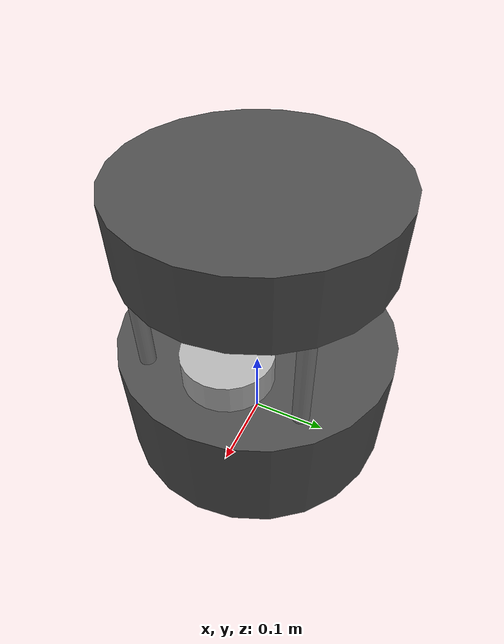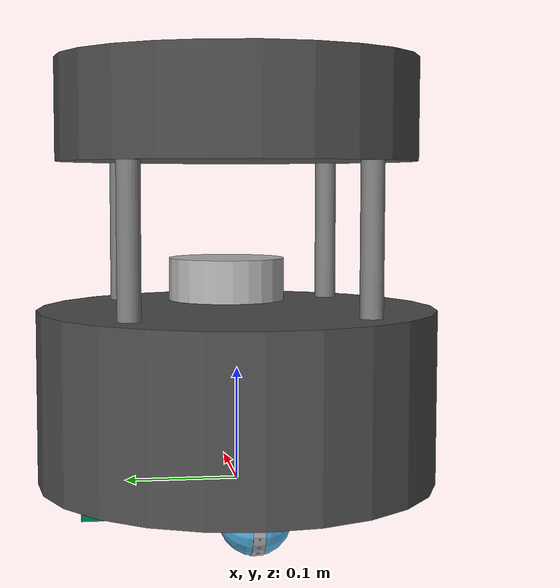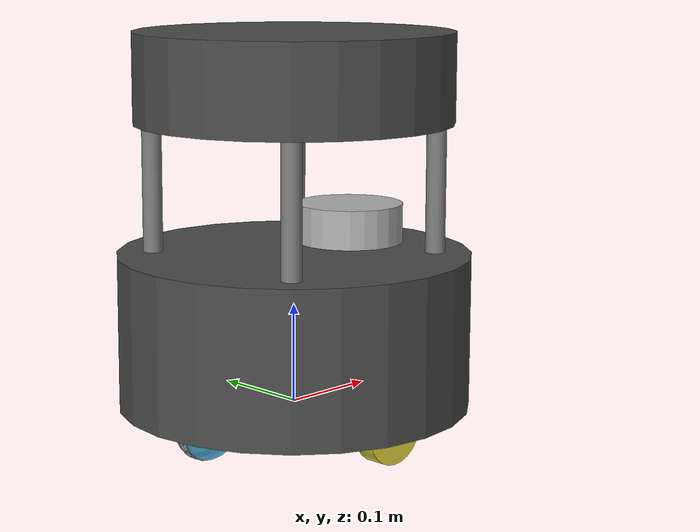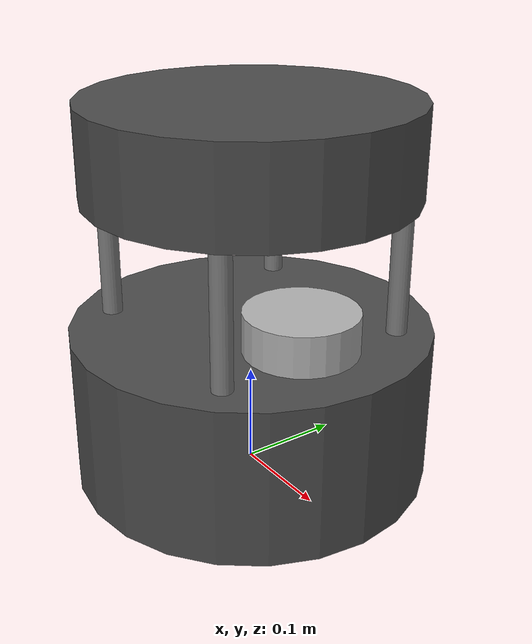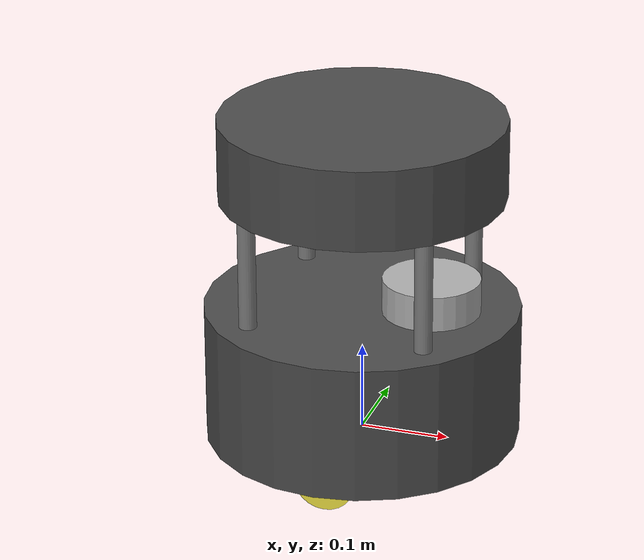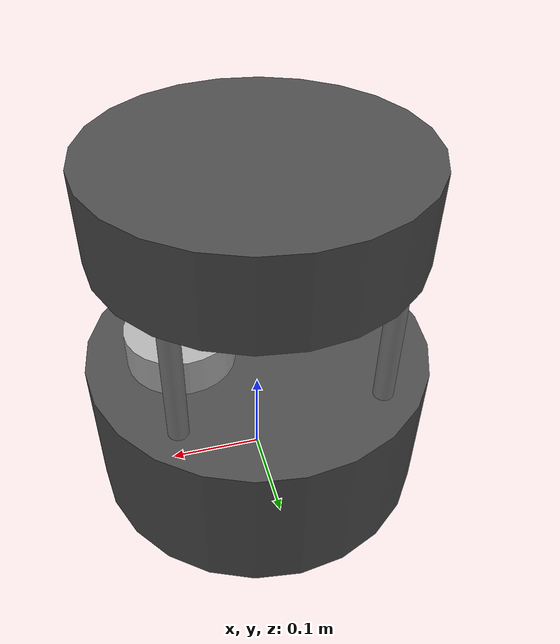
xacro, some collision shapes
<?xml version="1.0"?>
<robot name="barista_robot" xmlns:xacro="http://www.ros.org/wiki/xacro">

    <xacro:arg name="include_laser" default="true"/>
    <xacro:arg name="robot_name" default=""/>
    <xacro:arg name="color" default="0.3 0.3 0.3 1"/>

    <!-- Assignment dimensions, in metres. -->
    <xacro:property name="wheel_radius" value="0.0352"/>
    <xacro:property name="wheel_width" value="0.0206"/>
    <xacro:property name="rod_width" value="0.02"/>
    <xacro:property name="rod_length" value="0.22"/>
    <xacro:property name="robot_name" value="$(arg robot_name)"/>

    <xacro:property name="prefix" value="${robot_name + '/' if robot_name else ''}"/>

    <!-- Reusable components. -->
    <xacro:include filename="drive_wheel.xacro"/>
    <xacro:include filename="caster_wheel.xacro"/>
    <xacro:include filename="standoff_rod.xacro"/>
    <xacro:include filename="cup_holder_tray.xacro"/>
    <xacro:include filename="laser_scanner.xacro"/>

    <material name="base_body_color"><color rgba="$(arg color)"/></material>
    <material name="gray"><color rgba="0.5 0.5 0.5 1"/></material>

    <!-- Main body. -->
    <link name="base_link"/>
    <link name="chassis">
        <inertial>
            <origin xyz="0 0 0.11661564" rpy="0 0 0"/>
            <mass value="2"/>
            <inertia ixx="0.0594855" ixy="0" ixz="0"
                     iyy="0.0583976" iyz="0.00000142499" izz="0.0292619"/>
        </inertial>
        <visual>
            <origin xyz="0 0 0.077" rpy="0 0 0"/>
            <geometry><cylinder radius="0.178" length="0.155"/></geometry>
            <material name="base_body_color"/>
        </visual>
        <collision>
            <origin xyz="0 0 0.077" rpy="0 0 0"/>
            <geometry><cylinder radius="0.178" length="0.155"/></geometry>
        </collision>
    </link>
    <joint name="base_link_joint" type="fixed">
        <origin rpy="0 0 0" xyz="0 0 0"/>
        <parent link="base_link"/>
        <child link="chassis"/>
    </joint>

    <!-- Drive wheels -->
    <xacro:drive_wheel side="left"  y="0.13"
                       radius="${wheel_radius}" width="${wheel_width}" color="green_dark"/>
    <xacro:drive_wheel side="right" y="-0.13"
                       radius="${wheel_radius}" width="${wheel_width}" color="black"/>

    <!-- Caster wheels -->
    <xacro:caster_wheel name="front" x="0.12" pitch_color="green_dark"
                        yaw_friction="false" roll_friction="true"/>
    <xacro:caster_wheel name="back" x="-0.12" pitch_color="green_light"
                        yaw_friction="true" roll_friction="false"/>

    <!-- Four rods -->
    <xacro:standoff_rod name="front_left_support_rod"  x="0.10"  y="0.10"  z="0.20"
                        width="${rod_width}" length="${rod_length}"/>
    <xacro:standoff_rod name="front_right_support_rod" x="0.10"  y="-0.10" z="0.20"
                        width="${rod_width}" length="${rod_length}"/>
    <xacro:standoff_rod name="back_left_support_rod"   x="-0.10" y="0.10"  z="0.20"
                        width="${rod_width}" length="${rod_length}"/>
    <xacro:standoff_rod name="back_right_support_rod"  x="-0.10" y="-0.10" z="0.20"
                        width="${rod_width}" length="${rod_length}"/>

    <xacro:cup_holder_tray radius="0.16" length="0.09" z="0.33"/>

    <!-- Disabled means the link, mesh, joint, and sensor are all absent. -->
    <xacro:if value="$(arg include_laser)">
        <xacro:laser_scanner/>
    </xacro:if>

    <!-- Existing Gazebo systems from the URDF. -->
    <gazebo>
        <plugin filename="gz-sim-joint-state-publisher-system"
                name="gz::sim::systems::JointStatePublisher">
            <topic>/${prefix}joint_states</topic>
            <update_rate>30</update_rate>
            <joint_name>joint_left_wheel</joint_name>
            <joint_name>joint_right_wheel</joint_name>
            <joint_name>front_yaw_joint</joint_name>
            <joint_name>back_yaw_joint</joint_name>
            <joint_name>front_roll_joint</joint_name>
            <joint_name>back_roll_joint</joint_name>
            <joint_name>front_pitch_joint</joint_name>
            <joint_name>back_pitch_joint</joint_name>
        </plugin>
    </gazebo>

    <gazebo>
        <plugin filename="gz-sim-diff-drive-system"
                name="gz::sim::systems::DiffDrive">
            <left_joint>joint_left_wheel</left_joint>
            <right_joint>joint_right_wheel</right_joint>
            <wheel_separation>0.26</wheel_separation>
            <wheel_radius>${wheel_radius}</wheel_radius>
            <topic>/${prefix}cmd_vel</topic>
            <publish_odom>true</publish_odom>
            <publish_odom_tf>true</publish_odom_tf>
            <publish_wheel_tf>true</publish_wheel_tf>
            <odom_topic>/${prefix}odom</odom_topic>
            <tf_topic>/${prefix}tf</tf_topic>
            <frame_id>${prefix}odom</frame_id>
            <child_frame_id>${prefix}base_link</child_frame_id>
        </plugin>
    </gazebo>
</robot>

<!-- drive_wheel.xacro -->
<robot xmlns:xacro="http://www.ros.org/wiki/xacro">
    <!-- Wheel axis, friction, and joint names match the original working URDF. -->
    <xacro:macro name="drive_wheel" params="side y radius width color">
        <link name="${side}_wheel">
            <visual>
                <origin rpy="0 1.5707 1.5707" xyz="0 0 0"/>
                <geometry>
                    <cylinder radius="${radius}" length="${width}"/>
                </geometry>
            </visual>
            <collision>
                <origin rpy="0 1.5707 1.5707" xyz="0 0 0"/>
                <geometry>
                    <cylinder radius="${radius}" length="${width}"/>
                </geometry>
            </collision>
            <inertial>
                <origin rpy="0 1.5707 1.5707" xyz="0 0 0"/>
                <mass value="0.05"/>
                <inertia
                    ixx="${0.05 * (3 * radius * radius + width * width) / 12}"
                    ixy="0" ixz="0"
                    iyy="${0.05 * (3 * radius * radius + width * width) / 12}"
                    iyz="0"
                    izz="${0.05 * radius * radius / 2}"/>
            </inertial>
        </link>

        <gazebo reference="${side}_wheel">
            <collision>
                <surface>
                    <friction>
                        <ode>
                            <mu>10.0</mu>
                            <mu2>10.0</mu2>
                        </ode>
                    </friction>
                    <contact>
                        <ode>
                            <kp>10000000.0</kp>
                            <kd>10000000.0</kd>
                        </ode>
                    </contact>
                </surface>
            </collision>
        </gazebo>

        <joint name="joint_${side}_wheel" type="continuous">
            <origin xyz="0 ${y} 0" rpy="0 0 0"/>
            <parent link="base_link"/>
            <child link="${side}_wheel"/>
            <axis xyz="0 1 0"/>
            <limit effort="10000" velocity="1000"/>
        </joint>
    </xacro:macro>
</robot>

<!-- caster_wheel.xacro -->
<robot xmlns:xacro="http://www.ros.org/wiki/xacro">
    <!-- Recreates the original three-joint yaw / roll / pitch caster assembly. -->
    <xacro:macro name="caster_wheel"
                 params="name x pitch_color yaw_friction roll_friction">
        <link name="${name}_yaw_link">
            <visual>
                <origin rpy="0 1.5707 1.5707" xyz="0 0 0"/>
                <geometry><cylinder length="0.01" radius="0.03"/></geometry>
            </visual>
            <collision>
                <origin rpy="0 1.5707 1.5707" xyz="0 0 0"/>
                <geometry><cylinder length="0.01" radius="0.03"/></geometry>
            </collision>
            <inertial>
                <origin rpy="0 1.5707 1.5707" xyz="0 0 0"/>
                <mass value="0.001"/>
                <inertia ixx="5.145833333333334e-09" ixy="0" ixz="0"
                         iyy="5.145833333333334e-09" iyz="0"
                         izz="1.0125000000000003e-08"/>
            </inertial>
        </link>

        <joint name="${name}_yaw_joint" type="continuous">
            <origin xyz="${x} 0 -0.005" rpy="0 0 0"/>
            <parent link="base_link"/>
            <child link="${name}_yaw_link"/>
            <axis xyz="0 0 1"/>
            <limit effort="1000.0" velocity="100.0"/>
            <xacro:if value="${yaw_friction}">
                <dynamics damping="0.0" friction="0.1"/>
            </xacro:if>
        </joint>

        <link name="${name}_roll_link">
            <visual>
                <origin rpy="0 1.5707 1.5707" xyz="0 0 0"/>
                <geometry><cylinder length="0.01" radius="0.03"/></geometry>
                <material name="base_body_color"/>
            </visual>
            <collision>
                <origin rpy="0 1.5707 1.5707" xyz="0 0 0"/>
                <geometry><cylinder length="0.01" radius="0.03"/></geometry>
            </collision>
            <inertial>
                <origin rpy="0 1.5707 1.5707" xyz="0 0 0"/>
                <mass value="0.001"/>
                <inertia ixx="2.7083333333333334e-08" ixy="0" ixz="0"
                         iyy="2.7083333333333334e-08" iyz="0"
                         izz="5.0000000000000004e-08"/>
            </inertial>
        </link>

        <joint name="${name}_roll_joint" type="continuous">
            <origin xyz="0 0 0" rpy="0 0 0"/>
            <parent link="${name}_yaw_link"/>
            <child link="${name}_roll_link"/>
            <axis xyz="1 0 0"/>
            <limit effort="1000.0" velocity="100.0"/>
            <xacro:if value="${roll_friction}">
                <dynamics damping="0.0" friction="0.1"/>
            </xacro:if>
        </joint>

        <link name="${name}_pitch_link">
            <visual>
                <origin rpy="0 1.5707 1.5707" xyz="0 0 0"/>
                <geometry><sphere radius="0.03"/></geometry>
            </visual>
            <collision>
                <origin rpy="0 1.5707 1.5707" xyz="0 0 0"/>
                <geometry><sphere radius="0.03"/></geometry>
            </collision>
            <inertial>
                <origin rpy="0 1.5707 1.5707" xyz="0 0 0"/>
                <mass value="0.001"/>
                <inertia ixx="4e-08" ixy="0" ixz="0"
                         iyy="4e-08" iyz="0" izz="4e-08"/>
            </inertial>
        </link>

        <gazebo reference="${name}_pitch_link">
            <collision>
                <surface>
                    <friction>
                        <ode>
                            <mu>0.5</mu>
                            <mu2>0.5</mu2>
                        </ode>
                    </friction>
                    <contact>
                        <ode>
                            <kp>10000000.0</kp>
                            <kd>10000000.0</kd>
                        </ode>
                    </contact>
                </surface>
            </collision>
        </gazebo>

        <joint name="${name}_pitch_joint" type="continuous">
            <origin xyz="0 0 0" rpy="0 0 0"/>
            <parent link="${name}_roll_link"/>
            <child link="${name}_pitch_link"/>
            <axis xyz="0 1 0"/>
            <limit effort="1000.0" velocity="100.0"/>
            <dynamics damping="0.0" friction="0.1"/>
        </joint>
    </xacro:macro>
</robot>

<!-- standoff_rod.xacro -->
<robot xmlns:xacro="http://www.ros.org/wiki/xacro">
    <!-- width is the rod diameter: the drawing specifies 20 mm. -->
    <xacro:macro name="standoff_rod" params="name x y z width length">
        <link name="${name}_link">
            <visual>
                <geometry>
                    <cylinder radius="${width / 2}" length="${length}"/>
                </geometry>
                <material name="gray"/>
            </visual>
            <collision>
                <geometry>
                    <cylinder radius="${width / 2}" length="${length}"/>
                </geometry>
            </collision>
        </link>
        <joint name="${name}_joint" type="fixed">
            <parent link="base_link"/>
            <child link="${name}_link"/>
            <origin xyz="${x} ${y} ${z}" rpy="0 0 0"/>
        </joint>
    </xacro:macro>
</robot>

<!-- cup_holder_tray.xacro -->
<robot xmlns:xacro="http://www.ros.org/wiki/xacro">
    <xacro:macro name="cup_holder_tray" params="radius length z">
        <link name="tray_link">
            <visual>
                <geometry>
                    <cylinder radius="${radius}" length="${length}"/>
                </geometry>
                <material name="base_body_color"/>
            </visual>
            <collision>
                <geometry>
                    <cylinder radius="${radius}" length="${length}"/>
                </geometry>
            </collision>
        </link>
        <joint name="tray_joint" type="fixed">
            <parent link="base_link"/>
            <child link="tray_link"/>
            <origin xyz="0 0 ${z}" rpy="0 0 0"/>
        </joint>
    </xacro:macro>
</robot>

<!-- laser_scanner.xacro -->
<robot xmlns:xacro="http://www.ros.org/wiki/xacro">
    <!-- Laser stays centered on the chassis, NOT on the cup-holder tray. -->
    <xacro:macro name="laser_scanner" params="">
        <link name="laser_link">
            <visual>
                <origin xyz="0 0 -0.03" rpy="0 0 0"/>
                <geometry>
                    <mesh filename="package://barista_robot_description/meshes/slamtec_rplidar_a2m8.dae"/>
                </geometry>
            </visual>
            <collision>
                <origin xyz="0 0 -0.01" rpy="0 0 0"/>
                <geometry><cylinder radius="0.055" length="0.04"/></geometry>
            </collision>
            <inertial>
                <origin xyz="0 0 -0.01" rpy="0 0 0"/>
                <mass value="0.2"/>
                <inertia ixx="0.00018" ixy="0" ixz="0"
                         iyy="0.00018" iyz="0" izz="0.00030"/>
            </inertial>
        </link>

        <joint name="laser_joint" type="fixed">
            <parent link="chassis"/>
            <child link="laser_link"/>
            <origin xyz="0.08 0 0.185" rpy="0 0 0"/>
        </joint>

        <gazebo reference="laser_link">
            <sensor name="laser_scanner" type="gpu_lidar">
                <always_on>true</always_on>
                <update_rate>10</update_rate>
                <visualize>true</visualize>
                <topic>/${prefix}scan</topic>
                <gz_frame_id>${prefix}laser_link</gz_frame_id>
                <lidar>
                    <scan>
                        <horizontal>
                            <samples>360</samples>
                            <resolution>1</resolution>
                            <min_angle>-3.14159</min_angle>
                            <max_angle>3.14159</max_angle>
                        </horizontal>
                        <vertical>
                            <samples>1</samples>
                            <resolution>1</resolution>
                            <min_angle>0</min_angle>
                            <max_angle>0</max_angle>
                        </vertical>
                    </scan>
                    <range>
                        <min>0.15</min>
                        <max>10.0</max>
                        <resolution>0.01</resolution>
                    </range>
                </lidar>
            </sensor>
        </gazebo>
    </xacro:macro>
</robot>
